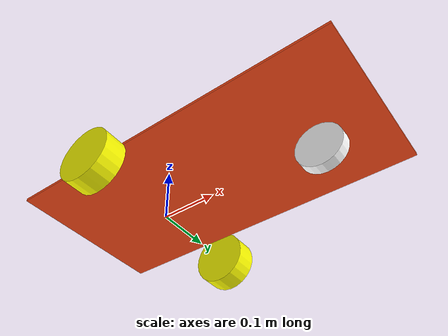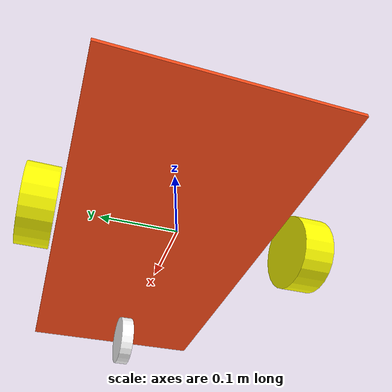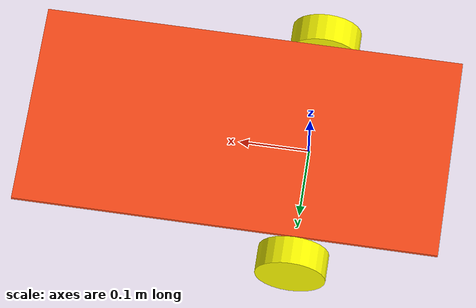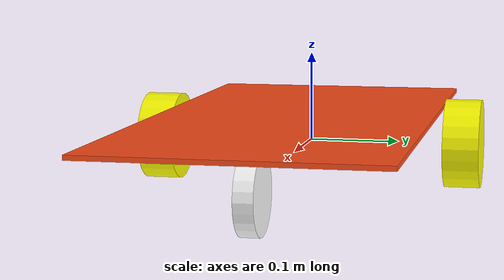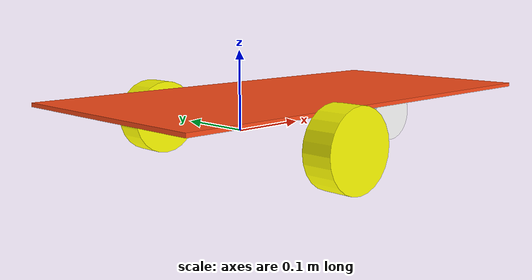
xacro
<?xml version="1.0"?>
<robot xmlns:xacro="http://www.ros.org/wiki/xacro" >

 <material name="white">
    <color rgba="1 1 1 1"/>
</material>

<material name="orange">
    <color rgba="1 0.3 0.1 1"/>
</material>

<material name="blue">
    <color rgba="0.2 0.2 1 1"/>
</material>

<material name="yellow">
    <color rgba="1 1 0 1"/>
</material>

<material name="black">
    <color rgba="0 0 0 1"/>
</material>

<link name="base_link">
</link>

<joint name="chassis_joint" type="fixed">
    <parent link="base_link"/>
    <child link="chassis"/>
    <origin xyz="-0.1 0 0"/>
</joint>

<link name="chassis">
    <visual>
        <origin xyz="0.2 0 0.0375" rpy="0 0 0"/>
        <geometry>
            <box size="0.6 0.3 0.005"/>
        </geometry>
        <material name="orange"/>
    </visual>

    <collision>
        <origin xyz="0.2 0 0.0375" rpy="0 0 0"/>
        <geometry>
            <box size="0.6 0.3 0.005"/>
        </geometry>
        <material name="orange"/>
    </collision>

    <xacro:inertial_box mass="0.5" x="0.6" y="0.3" z="0.005">
        <origin xyz="0.2 0 0.0375" rpy="0 0 0"/>
    </xacro:inertial_box>
</link>

<!-- LEFT WHEEL -->

<joint name="left_wheel_joint" type="continuous">
    <parent link="base_link"/>
    <child link="left_wheel"/>
    <origin xyz="0 0.175 0" rpy="-${pi/2} 0 0"/>
    <axis xyz="0 0 1"/>
</joint>

<link name="left_wheel">
    <visual>
        <geometry>
            <cylinder length="0.04" radius="0.05" />
        </geometry>
        <material name="yellow"/>
    </visual>

    <collision>
        <geometry>
            <cylinder length="0.04" radius="0.05" />
        </geometry>
        <material name="yellow"/>
    </collision>

    <xacro:inertial_cylinder mass="0.1" length="0.04" radius="0.05">
        <origin xyz="0 0 0" rpy="0 0 0"/>
    </xacro:inertial_cylinder>
</link>

<!-- RIGHT WHEEL -->

<joint name="right_wheel_joint" type="continuous">
    <parent link="base_link"/>
    <child link="right_wheel"/>
    <origin xyz="0 -0.175 0" rpy="${pi/2} 0 0"/>
    <axis xyz="0 0 -1"/>
</joint>

<link name="right_wheel">
    <visual>
        <geometry>
            <cylinder length="0.04" radius="0.05" />
        </geometry>
        <material name="yellow"/>
    </visual>
    <collision>
        <geometry>
            <cylinder length="0.04" radius="0.05" />
        </geometry>
        <material name="yellow"/>
    </collision>

    <xacro:inertial_cylinder mass="0.1" length="0.04" radius="0.05">
        <origin xyz="0 0 0" rpy="0 0 0"/>
    </xacro:inertial_cylinder>

</link>

<!-- CASTER WHEEL -->

<joint name="caster_wheel_joint" type="fixed">
    <parent link="chassis"/>
    <child link="caster_wheel"/>
    <origin xyz="0.4 0 -0.01" rpy="${pi/2} 0 0"/>
</joint>

<link name="caster_wheel">
    <visual>
        <geometry>
            <cylinder length="0.02" radius="0.04" />
        </geometry>
        <material name="white"/>
    </visual>

    <collision>
        <geometry>
            <cylinder length="0.02" radius="0.04" />
        </geometry>
        <material name="white"/>
    </collision>

    <xacro:inertial_cylinder mass="0.1" length="0.02" radius="0.04">
        <origin xyz="0 0 0" rpy="0 0 0"/>
    </xacro:inertial_cylinder>
</link>

</robot>
